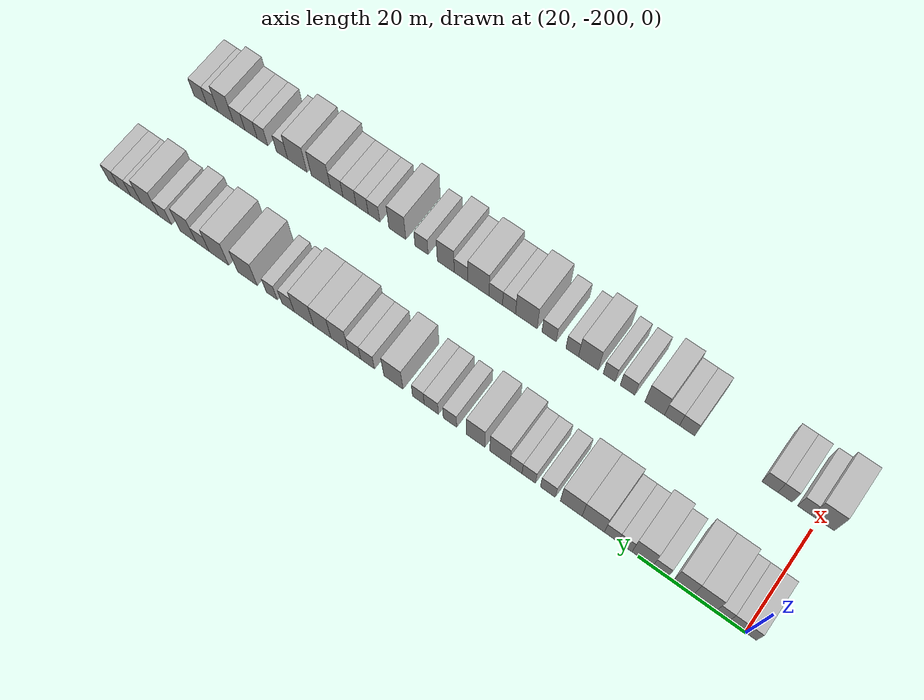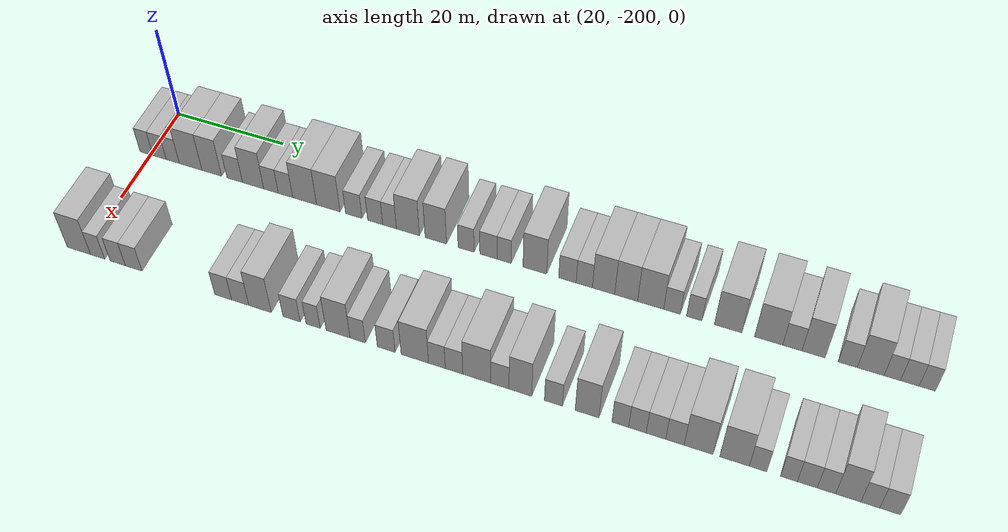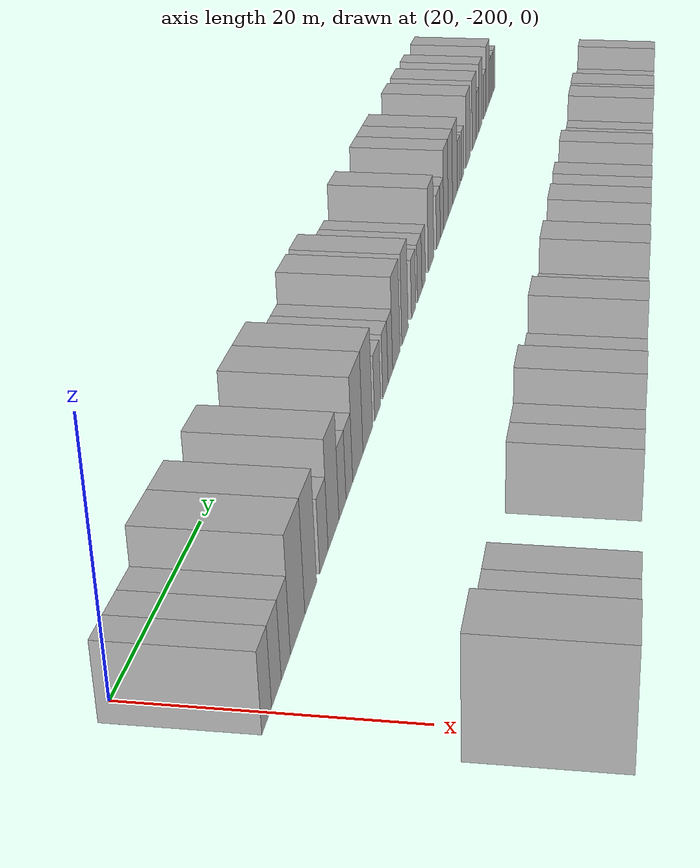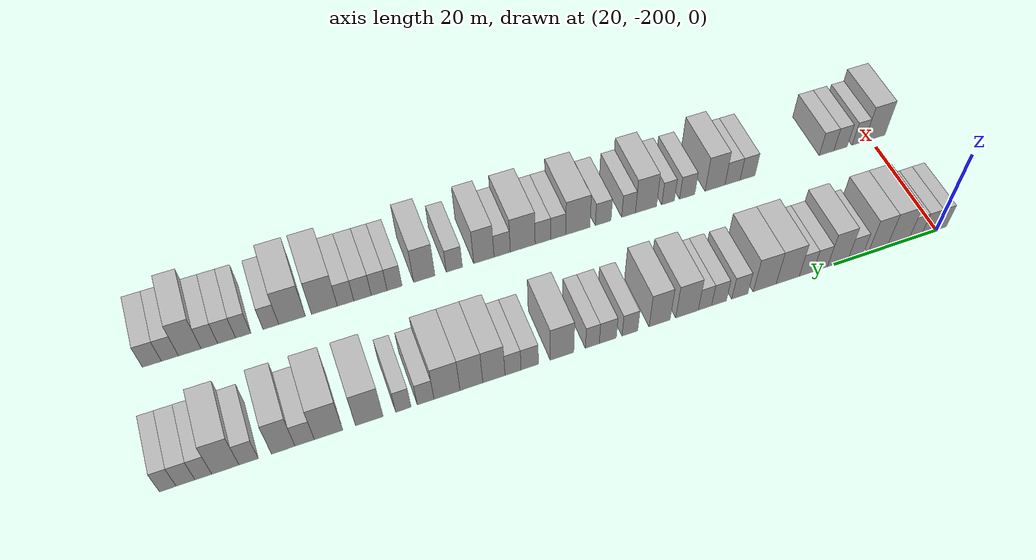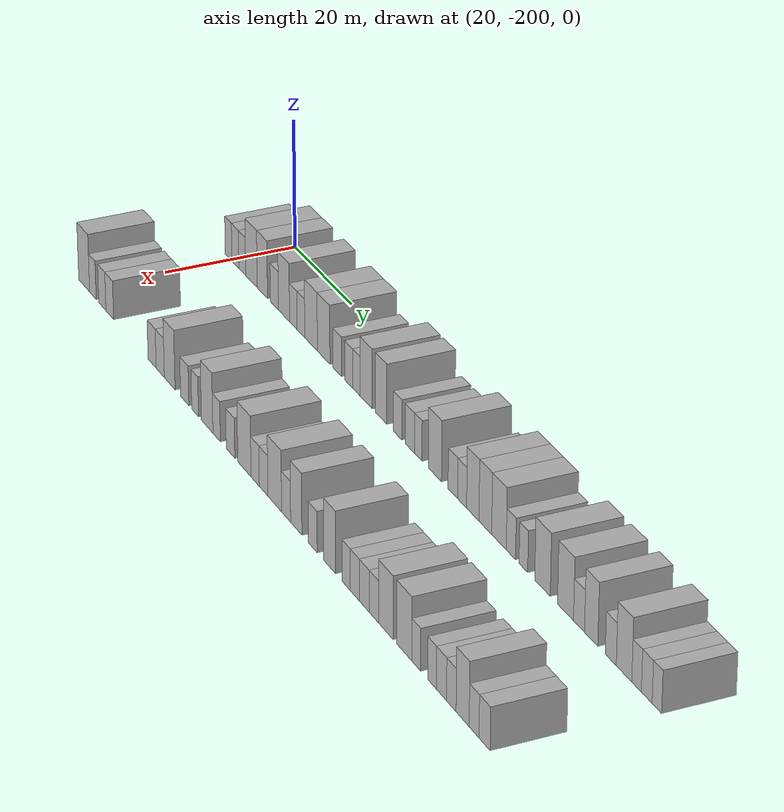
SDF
<sdf version="1.6">
 <world name="default">
  <model name="building_1">
   <static>1</static>
   <pose>25.0000 -200.7708 0 0.000000 0.000000 0.000000</pose>
   <link name="link">
    <pose>0 0 3.00 0 0 0</pose>
    <collision name="collision"><geometry><box><size>10.0000 2.4585 6.0000</size></box></geometry></collision>
    <visual name="visual">
     <cast_shadows>0</cast_shadows>
     <geometry><box><size>10.0000 2.4585 6.0000</size></box></geometry>
     <material>
      <script>
       <uri>model://HANNAS_wall/materials/scripts</uri>
       <uri>model://HANNAS_wall/materials/textures</uri>
       <name>vrc/HANNAS_wall</name>
      </script>
     </material>
    </visual>
   </link>
  </model>
  <model name="building_2">
   <static>1</static>
   <pose>25.0000 -198.2721 0 0.000000 0.000000 0.000000</pose>
   <link name="link">
    <pose>0 0 3.00 0 0 0</pose>
    <collision name="collision"><geometry><box><size>10.0000 2.5389 6.0000</size></box></geometry></collision>
    <visual name="visual">
     <cast_shadows>0</cast_shadows>
     <geometry><box><size>10.0000 2.5389 6.0000</size></box></geometry>
     <material>
      <script>
       <uri>model://HANNAS_wall/materials/scripts</uri>
       <uri>model://HANNAS_wall/materials/textures</uri>
       <name>vrc/HANNAS_wall</name>
      </script>
     </material>
    </visual>
   </link>
  </model>
  <model name="building_3">
   <static>1</static>
   <pose>25.0000 -195.7499 0 0.000000 0.000000 0.000000</pose>
   <link name="link">
    <pose>0 0 3.00 0 0 0</pose>
    <collision name="collision"><geometry><box><size>10.0000 2.5055 6.0000</size></box></geometry></collision>
    <visual name="visual">
     <cast_shadows>0</cast_shadows>
     <geometry><box><size>10.0000 2.5055 6.0000</size></box></geometry>
     <material>
      <script>
       <uri>model://HANNAS_wall/materials/scripts</uri>
       <uri>model://HANNAS_wall/materials/textures</uri>
       <name>vrc/HANNAS_wall</name>
      </script>
     </material>
    </visual>
   </link>
  </model>
  <model name="building_4">
   <static>1</static>
   <pose>25.0000 -192.3677 0 0.000000 0.000000 0.000000</pose>
   <link name="link">
    <pose>0 0 4.50 0 0 0</pose>
    <collision name="collision"><geometry><box><size>10.0000 4.2589 9.0000</size></box></geometry></collision>
    <visual name="visual">
     <cast_shadows>0</cast_shadows>
     <geometry><box><size>10.0000 4.2589 9.0000</size></box></geometry>
     <material>
      <script>
       <uri>model://HANNAS_wall/materials/scripts</uri>
       <uri>model://HANNAS_wall/materials/textures</uri>
       <name>vrc/HANNAS_wall</name>
      </script>
     </material>
    </visual>
   </link>
  </model>
  <model name="building_5">
   <static>1</static>
   <pose>25.0000 -188.3884 0 0.000000 0.000000 0.000000</pose>
   <link name="link">
    <pose>0 0 4.50 0 0 0</pose>
    <collision name="collision"><geometry><box><size>10.0000 3.6997 9.0000</size></box></geometry></collision>
    <visual name="visual">
     <cast_shadows>0</cast_shadows>
     <geometry><box><size>10.0000 3.6997 9.0000</size></box></geometry>
     <material>
      <script>
       <uri>model://HANNAS_wall/materials/scripts</uri>
       <uri>model://HANNAS_wall/materials/textures</uri>
       <name>vrc/HANNAS_wall</name>
      </script>
     </material>
    </visual>
   </link>
  </model>
  <model name="building_6">
   <static>1</static>
   <pose>25.0000 -184.0949 0 0.000000 0.000000 0.000000</pose>
   <link name="link">
    <pose>0 0 3.00 0 0 0</pose>
    <collision name="collision"><geometry><box><size>10.0000 2.8872 6.0000</size></box></geometry></collision>
    <visual name="visual">
     <cast_shadows>0</cast_shadows>
     <geometry><box><size>10.0000 2.8872 6.0000</size></box></geometry>
     <material>
      <script>
       <uri>model://HANNAS_wall/materials/scripts</uri>
       <uri>model://HANNAS_wall/materials/textures</uri>
       <name>vrc/HANNAS_wall</name>
      </script>
     </material>
    </visual>
   </link>
  </model>
  <model name="building_7">
   <static>1</static>
   <pose>25.0000 -180.6924 0 0.000000 0.000000 0.000000</pose>
   <link name="link">
    <pose>0 0 4.50 0 0 0</pose>
    <collision name="collision"><geometry><box><size>10.0000 3.9179 9.0000</size></box></geometry></collision>
    <visual name="visual">
     <cast_shadows>0</cast_shadows>
     <geometry><box><size>10.0000 3.9179 9.0000</size></box></geometry>
     <material>
      <script>
       <uri>model://HANNAS_wall/materials/scripts</uri>
       <uri>model://HANNAS_wall/materials/textures</uri>
       <name>vrc/HANNAS_wall</name>
      </script>
     </material>
    </visual>
   </link>
  </model>
  <model name="building_8">
   <static>1</static>
   <pose>25.0000 -177.3952 0 0.000000 0.000000 0.000000</pose>
   <link name="link">
    <pose>0 0 3.00 0 0 0</pose>
    <collision name="collision"><geometry><box><size>10.0000 2.6764 6.0000</size></box></geometry></collision>
    <visual name="visual">
     <cast_shadows>0</cast_shadows>
     <geometry><box><size>10.0000 2.6764 6.0000</size></box></geometry>
     <material>
      <script>
       <uri>model://HANNAS_wall/materials/scripts</uri>
       <uri>model://HANNAS_wall/materials/textures</uri>
       <name>vrc/HANNAS_wall</name>
      </script>
     </material>
    </visual>
   </link>
  </model>
  <model name="building_9">
   <static>1</static>
   <pose>25.0000 -174.7308 0 0.000000 0.000000 0.000000</pose>
   <link name="link">
    <pose>0 0 3.00 0 0 0</pose>
    <collision name="collision"><geometry><box><size>10.0000 2.6524 6.0000</size></box></geometry></collision>
    <visual name="visual">
     <cast_shadows>0</cast_shadows>
     <geometry><box><size>10.0000 2.6524 6.0000</size></box></geometry>
     <material>
      <script>
       <uri>model://HANNAS_wall/materials/scripts</uri>
       <uri>model://HANNAS_wall/materials/textures</uri>
       <name>vrc/HANNAS_wall</name>
      </script>
     </material>
    </visual>
   </link>
  </model>
  <model name="building_10">
   <static>1</static>
   <pose>25.0000 -171.2416 0 0.000000 0.000000 0.000000</pose>
   <link name="link">
    <pose>0 0 4.50 0 0 0</pose>
    <collision name="collision"><geometry><box><size>10.0000 4.3261 9.0000</size></box></geometry></collision>
    <visual name="visual">
     <cast_shadows>0</cast_shadows>
     <geometry><box><size>10.0000 4.3261 9.0000</size></box></geometry>
     <material>
      <script>
       <uri>model://HANNAS_wall/materials/scripts</uri>
       <uri>model://HANNAS_wall/materials/textures</uri>
       <name>vrc/HANNAS_wall</name>
      </script>
     </material>
    </visual>
   </link>
  </model>
  <model name="building_11">
   <static>1</static>
   <pose>25.0000 -166.9484 0 0.000000 0.000000 0.000000</pose>
   <link name="link">
    <pose>0 0 4.50 0 0 0</pose>
    <collision name="collision"><geometry><box><size>10.0000 4.2603 9.0000</size></box></geometry></collision>
    <visual name="visual">
     <cast_shadows>0</cast_shadows>
     <geometry><box><size>10.0000 4.2603 9.0000</size></box></geometry>
     <material>
      <script>
       <uri>model://HANNAS_wall/materials/scripts</uri>
       <uri>model://HANNAS_wall/materials/textures</uri>
       <name>vrc/HANNAS_wall</name>
      </script>
     </material>
    </visual>
   </link>
  </model>
  <model name="building_12">
   <static>1</static>
   <pose>25.0000 -162.3492 0 0.000000 0.000000 0.000000</pose>
   <link name="link">
    <pose>0 0 3.00 0 0 0</pose>
    <collision name="collision"><geometry><box><size>10.0000 2.9381 6.0000</size></box></geometry></collision>
    <visual name="visual">
     <cast_shadows>0</cast_shadows>
     <geometry><box><size>10.0000 2.9381 6.0000</size></box></geometry>
     <material>
      <script>
       <uri>model://HANNAS_wall/materials/scripts</uri>
       <uri>model://HANNAS_wall/materials/textures</uri>
       <name>vrc/HANNAS_wall</name>
      </script>
     </material>
    </visual>
   </link>
  </model>
  <model name="building_13">
   <static>1</static>
   <pose>25.0000 -158.5419 0 0.000000 0.000000 0.000000</pose>
   <link name="link">
    <pose>0 0 3.00 0 0 0</pose>
    <collision name="collision"><geometry><box><size>10.0000 2.6766 6.0000</size></box></geometry></collision>
    <visual name="visual">
     <cast_shadows>0</cast_shadows>
     <geometry><box><size>10.0000 2.6766 6.0000</size></box></geometry>
     <material>
      <script>
       <uri>model://HANNAS_wall/materials/scripts</uri>
       <uri>model://HANNAS_wall/materials/textures</uri>
       <name>vrc/HANNAS_wall</name>
      </script>
     </material>
    </visual>
   </link>
  </model>
  <model name="building_14">
   <static>1</static>
   <pose>25.0000 -155.9962 0 0.000000 0.000000 0.000000</pose>
   <link name="link">
    <pose>0 0 3.00 0 0 0</pose>
    <collision name="collision"><geometry><box><size>10.0000 2.4147 6.0000</size></box></geometry></collision>
    <visual name="visual">
     <cast_shadows>0</cast_shadows>
     <geometry><box><size>10.0000 2.4147 6.0000</size></box></geometry>
     <material>
      <script>
       <uri>model://HANNAS_wall/materials/scripts</uri>
       <uri>model://HANNAS_wall/materials/textures</uri>
       <name>vrc/HANNAS_wall</name>
      </script>
     </material>
    </visual>
   </link>
  </model>
  <model name="building_15">
   <static>1</static>
   <pose>25.0000 -152.7614 0 0.000000 0.000000 0.000000</pose>
   <link name="link">
    <pose>0 0 4.50 0 0 0</pose>
    <collision name="collision"><geometry><box><size>10.0000 4.0549 9.0000</size></box></geometry></collision>
    <visual name="visual">
     <cast_shadows>0</cast_shadows>
     <geometry><box><size>10.0000 4.0549 9.0000</size></box></geometry>
     <material>
      <script>
       <uri>model://HANNAS_wall/materials/scripts</uri>
       <uri>model://HANNAS_wall/materials/textures</uri>
       <name>vrc/HANNAS_wall</name>
      </script>
     </material>
    </visual>
   </link>
  </model>
  <model name="building_16">
   <static>1</static>
   <pose>25.0000 -147.8683 0 0.000000 0.000000 0.000000</pose>
   <link name="link">
    <pose>0 0 4.50 0 0 0</pose>
    <collision name="collision"><geometry><box><size>10.0000 3.7314 9.0000</size></box></geometry></collision>
    <visual name="visual">
     <cast_shadows>0</cast_shadows>
     <geometry><box><size>10.0000 3.7314 9.0000</size></box></geometry>
     <material>
      <script>
       <uri>model://HANNAS_wall/materials/scripts</uri>
       <uri>model://HANNAS_wall/materials/textures</uri>
       <name>vrc/HANNAS_wall</name>
      </script>
     </material>
    </visual>
   </link>
  </model>
  <model name="building_17">
   <static>1</static>
   <pose>25.0000 -142.6221 0 0.000000 0.000000 0.000000</pose>
   <link name="link">
    <pose>0 0 3.00 0 0 0</pose>
    <collision name="collision"><geometry><box><size>10.0000 2.7608 6.0000</size></box></geometry></collision>
    <visual name="visual">
     <cast_shadows>0</cast_shadows>
     <geometry><box><size>10.0000 2.7608 6.0000</size></box></geometry>
     <material>
      <script>
       <uri>model://HANNAS_wall/materials/scripts</uri>
       <uri>model://HANNAS_wall/materials/textures</uri>
       <name>vrc/HANNAS_wall</name>
      </script>
     </material>
    </visual>
   </link>
  </model>
  <model name="building_18">
   <static>1</static>
   <pose>25.0000 -138.7657 0 0.000000 0.000000 0.000000</pose>
   <link name="link">
    <pose>0 0 3.00 0 0 0</pose>
    <collision name="collision"><geometry><box><size>10.0000 2.9520 6.0000</size></box></geometry></collision>
    <visual name="visual">
     <cast_shadows>0</cast_shadows>
     <geometry><box><size>10.0000 2.9520 6.0000</size></box></geometry>
     <material>
      <script>
       <uri>model://HANNAS_wall/materials/scripts</uri>
       <uri>model://HANNAS_wall/materials/textures</uri>
       <name>vrc/HANNAS_wall</name>
      </script>
     </material>
    </visual>
   </link>
  </model>
  <model name="building_19">
   <static>1</static>
   <pose>25.0000 -136.0867 0 0.000000 0.000000 0.000000</pose>
   <link name="link">
    <pose>0 0 3.00 0 0 0</pose>
    <collision name="collision"><geometry><box><size>10.0000 2.4060 6.0000</size></box></geometry></collision>
    <visual name="visual">
     <cast_shadows>0</cast_shadows>
     <geometry><box><size>10.0000 2.4060 6.0000</size></box></geometry>
     <material>
      <script>
       <uri>model://HANNAS_wall/materials/scripts</uri>
       <uri>model://HANNAS_wall/materials/textures</uri>
       <name>vrc/HANNAS_wall</name>
      </script>
     </material>
    </visual>
   </link>
  </model>
  <model name="building_20">
   <static>1</static>
   <pose>25.0000 -130.8775 0 0.000000 0.000000 0.000000</pose>
   <link name="link">
    <pose>0 0 4.50 0 0 0</pose>
    <collision name="collision"><geometry><box><size>10.0000 4.0125 9.0000</size></box></geometry></collision>
    <visual name="visual">
     <cast_shadows>0</cast_shadows>
     <geometry><box><size>10.0000 4.0125 9.0000</size></box></geometry>
     <material>
      <script>
       <uri>model://HANNAS_wall/materials/scripts</uri>
       <uri>model://HANNAS_wall/materials/textures</uri>
       <name>vrc/HANNAS_wall</name>
      </script>
     </material>
    </visual>
   </link>
  </model>
  <model name="building_21">
   <static>1</static>
   <pose>25.0000 -125.4084 0 0.000000 0.000000 0.000000</pose>
   <link name="link">
    <pose>0 0 3.00 0 0 0</pose>
    <collision name="collision"><geometry><box><size>10.0000 2.9255 6.0000</size></box></geometry></collision>
    <visual name="visual">
     <cast_shadows>0</cast_shadows>
     <geometry><box><size>10.0000 2.9255 6.0000</size></box></geometry>
     <material>
      <script>
       <uri>model://HANNAS_wall/materials/scripts</uri>
       <uri>model://HANNAS_wall/materials/textures</uri>
       <name>vrc/HANNAS_wall</name>
      </script>
     </material>
    </visual>
   </link>
  </model>
  <model name="building_22">
   <static>1</static>
   <pose>25.0000 -122.5982 0 0.000000 0.000000 0.000000</pose>
   <link name="link">
    <pose>0 0 3.00 0 0 0</pose>
    <collision name="collision"><geometry><box><size>10.0000 2.6951 6.0000</size></box></geometry></collision>
    <visual name="visual">
     <cast_shadows>0</cast_shadows>
     <geometry><box><size>10.0000 2.6951 6.0000</size></box></geometry>
     <material>
      <script>
       <uri>model://HANNAS_wall/materials/scripts</uri>
       <uri>model://HANNAS_wall/materials/textures</uri>
       <name>vrc/HANNAS_wall</name>
      </script>
     </material>
    </visual>
   </link>
  </model>
  <model name="building_23">
   <static>1</static>
   <pose>25.0000 -119.4095 0 0.000000 0.000000 0.000000</pose>
   <link name="link">
    <pose>0 0 4.50 0 0 0</pose>
    <collision name="collision"><geometry><box><size>10.0000 3.6823 9.0000</size></box></geometry></collision>
    <visual name="visual">
     <cast_shadows>0</cast_shadows>
     <geometry><box><size>10.0000 3.6823 9.0000</size></box></geometry>
     <material>
      <script>
       <uri>model://HANNAS_wall/materials/scripts</uri>
       <uri>model://HANNAS_wall/materials/textures</uri>
       <name>vrc/HANNAS_wall</name>
      </script>
     </material>
    </visual>
   </link>
  </model>
  <model name="building_24">
   <static>1</static>
   <pose>25.0000 -115.6903 0 0.000000 0.000000 0.000000</pose>
   <link name="link">
    <pose>0 0 4.50 0 0 0</pose>
    <collision name="collision"><geometry><box><size>10.0000 3.7561 9.0000</size></box></geometry></collision>
    <visual name="visual">
     <cast_shadows>0</cast_shadows>
     <geometry><box><size>10.0000 3.7561 9.0000</size></box></geometry>
     <material>
      <script>
       <uri>model://HANNAS_wall/materials/scripts</uri>
       <uri>model://HANNAS_wall/materials/textures</uri>
       <name>vrc/HANNAS_wall</name>
      </script>
     </material>
    </visual>
   </link>
  </model>
  <model name="building_25">
   <static>1</static>
   <pose>25.0000 -111.6862 0 0.000000 0.000000 0.000000</pose>
   <link name="link">
    <pose>0 0 4.50 0 0 0</pose>
    <collision name="collision"><geometry><box><size>10.0000 4.2523 9.0000</size></box></geometry></collision>
    <visual name="visual">
     <cast_shadows>0</cast_shadows>
     <geometry><box><size>10.0000 4.2523 9.0000</size></box></geometry>
     <material>
      <script>
       <uri>model://HANNAS_wall/materials/scripts</uri>
       <uri>model://HANNAS_wall/materials/textures</uri>
       <name>vrc/HANNAS_wall</name>
      </script>
     </material>
    </visual>
   </link>
  </model>
  <model name="building_26">
   <static>1</static>
   <pose>25.0000 -108.2138 0 0.000000 0.000000 0.000000</pose>
   <link name="link">
    <pose>0 0 3.00 0 0 0</pose>
    <collision name="collision"><geometry><box><size>10.0000 2.6924 6.0000</size></box></geometry></collision>
    <visual name="visual">
     <cast_shadows>0</cast_shadows>
     <geometry><box><size>10.0000 2.6924 6.0000</size></box></geometry>
     <material>
      <script>
       <uri>model://HANNAS_wall/materials/scripts</uri>
       <uri>model://HANNAS_wall/materials/textures</uri>
       <name>vrc/HANNAS_wall</name>
      </script>
     </material>
    </visual>
   </link>
  </model>
  <model name="building_27">
   <static>1</static>
   <pose>25.0000 -104.6309 0 0.000000 0.000000 0.000000</pose>
   <link name="link">
    <pose>0 0 3.00 0 0 0</pose>
    <collision name="collision"><geometry><box><size>10.0000 2.4735 6.0000</size></box></geometry></collision>
    <visual name="visual">
     <cast_shadows>0</cast_shadows>
     <geometry><box><size>10.0000 2.4735 6.0000</size></box></geometry>
     <material>
      <script>
       <uri>model://HANNAS_wall/materials/scripts</uri>
       <uri>model://HANNAS_wall/materials/textures</uri>
       <name>vrc/HANNAS_wall</name>
      </script>
     </material>
    </visual>
   </link>
  </model>
  <model name="building_28">
   <static>1</static>
   <pose>25.0000 -99.2087 0 0.000000 0.000000 0.000000</pose>
   <link name="link">
    <pose>0 0 4.50 0 0 0</pose>
    <collision name="collision"><geometry><box><size>10.0000 4.3710 9.0000</size></box></geometry></collision>
    <visual name="visual">
     <cast_shadows>0</cast_shadows>
     <geometry><box><size>10.0000 4.3710 9.0000</size></box></geometry>
     <material>
      <script>
       <uri>model://HANNAS_wall/materials/scripts</uri>
       <uri>model://HANNAS_wall/materials/textures</uri>
       <name>vrc/HANNAS_wall</name>
      </script>
     </material>
    </visual>
   </link>
  </model>
  <model name="building_29">
   <static>1</static>
   <pose>25.0000 -92.8101 0 0.000000 0.000000 0.000000</pose>
   <link name="link">
    <pose>0 0 4.50 0 0 0</pose>
    <collision name="collision"><geometry><box><size>10.0000 4.4262 9.0000</size></box></geometry></collision>
    <visual name="visual">
     <cast_shadows>0</cast_shadows>
     <geometry><box><size>10.0000 4.4262 9.0000</size></box></geometry>
     <material>
      <script>
       <uri>model://HANNAS_wall/materials/scripts</uri>
       <uri>model://HANNAS_wall/materials/textures</uri>
       <name>vrc/HANNAS_wall</name>
      </script>
     </material>
    </visual>
   </link>
  </model>
  <model name="building_30">
   <static>1</static>
   <pose>25.0000 -89.0975 0 0.000000 0.000000 0.000000</pose>
   <link name="link">
    <pose>0 0 3.00 0 0 0</pose>
    <collision name="collision"><geometry><box><size>10.0000 2.9989 6.0000</size></box></geometry></collision>
    <visual name="visual">
     <cast_shadows>0</cast_shadows>
     <geometry><box><size>10.0000 2.9989 6.0000</size></box></geometry>
     <material>
      <script>
       <uri>model://HANNAS_wall/materials/scripts</uri>
       <uri>model://HANNAS_wall/materials/textures</uri>
       <name>vrc/HANNAS_wall</name>
      </script>
     </material>
    </visual>
   </link>
  </model>
  <model name="building_31">
   <static>1</static>
   <pose>25.0000 -85.7972 0 0.000000 0.000000 0.000000</pose>
   <link name="link">
    <pose>0 0 4.50 0 0 0</pose>
    <collision name="collision"><geometry><box><size>10.0000 3.6017 9.0000</size></box></geometry></collision>
    <visual name="visual">
     <cast_shadows>0</cast_shadows>
     <geometry><box><size>10.0000 3.6017 9.0000</size></box></geometry>
     <material>
      <script>
       <uri>model://HANNAS_wall/materials/scripts</uri>
       <uri>model://HANNAS_wall/materials/textures</uri>
       <name>vrc/HANNAS_wall</name>
      </script>
     </material>
    </visual>
   </link>
  </model>
  <model name="building_32">
   <static>1</static>
   <pose>25.0000 -80.5384 0 0.000000 0.000000 0.000000</pose>
   <link name="link">
    <pose>0 0 3.00 0 0 0</pose>
    <collision name="collision"><geometry><box><size>10.0000 2.9159 6.0000</size></box></geometry></collision>
    <visual name="visual">
     <cast_shadows>0</cast_shadows>
     <geometry><box><size>10.0000 2.9159 6.0000</size></box></geometry>
     <material>
      <script>
       <uri>model://HANNAS_wall/materials/scripts</uri>
       <uri>model://HANNAS_wall/materials/textures</uri>
       <name>vrc/HANNAS_wall</name>
      </script>
     </material>
    </visual>
   </link>
  </model>
  <model name="building_33">
   <static>1</static>
   <pose>25.0000 -77.0380 0 0.000000 0.000000 0.000000</pose>
   <link name="link">
    <pose>0 0 4.50 0 0 0</pose>
    <collision name="collision"><geometry><box><size>10.0000 4.0849 9.0000</size></box></geometry></collision>
    <visual name="visual">
     <cast_shadows>0</cast_shadows>
     <geometry><box><size>10.0000 4.0849 9.0000</size></box></geometry>
     <material>
      <script>
       <uri>model://HANNAS_wall/materials/scripts</uri>
       <uri>model://HANNAS_wall/materials/textures</uri>
       <name>vrc/HANNAS_wall</name>
      </script>
     </material>
    </visual>
   </link>
  </model>
  <model name="building_34">
   <static>1</static>
   <pose>25.0000 -73.7491 0 0.000000 0.000000 0.000000</pose>
   <link name="link">
    <pose>0 0 3.00 0 0 0</pose>
    <collision name="collision"><geometry><box><size>10.0000 2.4927 6.0000</size></box></geometry></collision>
    <visual name="visual">
     <cast_shadows>0</cast_shadows>
     <geometry><box><size>10.0000 2.4927 6.0000</size></box></geometry>
     <material>
      <script>
       <uri>model://HANNAS_wall/materials/scripts</uri>
       <uri>model://HANNAS_wall/materials/textures</uri>
       <name>vrc/HANNAS_wall</name>
      </script>
     </material>
    </visual>
   </link>
  </model>
  <model name="building_35">
   <static>1</static>
   <pose>25.0000 -71.1056 0 0.000000 0.000000 0.000000</pose>
   <link name="link">
    <pose>0 0 3.00 0 0 0</pose>
    <collision name="collision"><geometry><box><size>10.0000 2.7944 6.0000</size></box></geometry></collision>
    <visual name="visual">
     <cast_shadows>0</cast_shadows>
     <geometry><box><size>10.0000 2.7944 6.0000</size></box></geometry>
     <material>
      <script>
       <uri>model://HANNAS_wall/materials/scripts</uri>
       <uri>model://HANNAS_wall/materials/textures</uri>
       <name>vrc/HANNAS_wall</name>
      </script>
     </material>
    </visual>
   </link>
  </model>
  <model name="building_36">
   <static>1</static>
   <pose>25.0000 -68.4861 0 0.000000 0.000000 0.000000</pose>
   <link name="link">
    <pose>0 0 3.00 0 0 0</pose>
    <collision name="collision"><geometry><box><size>10.0000 2.4445 6.0000</size></box></geometry></collision>
    <visual name="visual">
     <cast_shadows>0</cast_shadows>
     <geometry><box><size>10.0000 2.4445 6.0000</size></box></geometry>
     <material>
      <script>
       <uri>model://HANNAS_wall/materials/scripts</uri>
       <uri>model://HANNAS_wall/materials/textures</uri>
       <name>vrc/HANNAS_wall</name>
      </script>
     </material>
    </visual>
   </link>
  </model>
  <model name="building_106">
   <static>1</static>
   <pose>47.0000 -200.8595 0 0.000000 0.000000 0.000000</pose>
   <link name="link">
    <pose>0 0 4.50 0 0 0</pose>
    <collision name="collision"><geometry><box><size>10.0000 4.2809 9.0000</size></box></geometry></collision>
    <visual name="visual">
     <cast_shadows>0</cast_shadows>
     <geometry><box><size>10.0000 4.2809 9.0000</size></box></geometry>
     <material>
      <script>
       <uri>model://HANNAS_wall/materials/scripts</uri>
       <uri>model://HANNAS_wall/materials/textures</uri>
       <name>vrc/HANNAS_wall</name>
      </script>
     </material>
    </visual>
   </link>
  </model>
  <model name="building_107">
   <static>1</static>
   <pose>47.0000 -197.4300 0 0.000000 0.000000 0.000000</pose>
   <link name="link">
    <pose>0 0 3.00 0 0 0</pose>
    <collision name="collision"><geometry><box><size>10.0000 2.5781 6.0000</size></box></geometry></collision>
    <visual name="visual">
     <cast_shadows>0</cast_shadows>
     <geometry><box><size>10.0000 2.5781 6.0000</size></box></geometry>
     <material>
      <script>
       <uri>model://HANNAS_wall/materials/scripts</uri>
       <uri>model://HANNAS_wall/materials/textures</uri>
       <name>vrc/HANNAS_wall</name>
      </script>
     </material>
    </visual>
   </link>
  </model>
  <model name="building_108">
   <static>1</static>
   <pose>47.0000 -193.7611 0 0.000000 0.000000 0.000000</pose>
   <link name="link">
    <pose>0 0 3.00 0 0 0</pose>
    <collision name="collision"><geometry><box><size>10.0000 2.7598 6.0000</size></box></geometry></collision>
    <visual name="visual">
     <cast_shadows>0</cast_shadows>
     <geometry><box><size>10.0000 2.7598 6.0000</size></box></geometry>
     <material>
      <script>
       <uri>model://HANNAS_wall/materials/scripts</uri>
       <uri>model://HANNAS_wall/materials/textures</uri>
       <name>vrc/HANNAS_wall</name>
      </script>
     </material>
    </visual>
   </link>
  </model>
  <model name="building_109">
   <static>1</static>
   <pose>47.0000 -190.8844 0 0.000000 0.000000 0.000000</pose>
   <link name="link">
    <pose>0 0 3.00 0 0 0</pose>
    <collision name="collision"><geometry><box><size>10.0000 2.9935 6.0000</size></box></geometry></collision>
    <visual name="visual">
     <cast_shadows>0</cast_shadows>
     <geometry><box><size>10.0000 2.9935 6.0000</size></box></geometry>
     <material>
      <script>
       <uri>model://HANNAS_wall/materials/scripts</uri>
       <uri>model://HANNAS_wall/materials/textures</uri>
       <name>vrc/HANNAS_wall</name>
      </script>
     </material>
    </visual>
   </link>
  </model>
  <model name="building_110">
   <static>1</static>
   <pose>47.0000 -174.9523 0 0.000000 0.000000 0.000000</pose>
   <link name="link">
    <pose>0 0 3.00 0 0 0</pose>
    <collision name="collision"><geometry><box><size>10.0000 2.9569 6.0000</size></box></geometry></collision>
    <visual name="visual">
     <cast_shadows>0</cast_shadows>
     <geometry><box><size>10.0000 2.9569 6.0000</size></box></geometry>
     <material>
      <script>
       <uri>model://HANNAS_wall/materials/scripts</uri>
       <uri>model://HANNAS_wall/materials/textures</uri>
       <name>vrc/HANNAS_wall</name>
      </script>
     </material>
    </visual>
   </link>
  </model>
  <model name="building_111">
   <static>1</static>
   <pose>47.0000 -171.9740 0 0.000000 0.000000 0.000000</pose>
   <link name="link">
    <pose>0 0 3.00 0 0 0</pose>
    <collision name="collision"><geometry><box><size>10.0000 2.9997 6.0000</size></box></geometry></collision>
    <visual name="visual">
     <cast_shadows>0</cast_shadows>
     <geometry><box><size>10.0000 2.9997 6.0000</size></box></geometry>
     <material>
      <script>
       <uri>model://HANNAS_wall/materials/scripts</uri>
       <uri>model://HANNAS_wall/materials/textures</uri>
       <name>vrc/HANNAS_wall</name>
      </script>
     </material>
    </visual>
   </link>
  </model>
  <model name="building_112">
   <static>1</static>
   <pose>47.0000 -168.5303 0 0.000000 0.000000 0.000000</pose>
   <link name="link">
    <pose>0 0 4.50 0 0 0</pose>
    <collision name="collision"><geometry><box><size>10.0000 3.8877 9.0000</size></box></geometry></collision>
    <visual name="visual">
     <cast_shadows>0</cast_shadows>
     <geometry><box><size>10.0000 3.8877 9.0000</size></box></geometry>
     <material>
      <script>
       <uri>model://HANNAS_wall/materials/scripts</uri>
       <uri>model://HANNAS_wall/materials/textures</uri>
       <name>vrc/HANNAS_wall</name>
      </script>
     </material>
    </visual>
   </link>
  </model>
  <model name="building_113">
   <static>1</static>
   <pose>47.0000 -163.1110 0 0.000000 0.000000 0.000000</pose>
   <link name="link">
    <pose>0 0 3.00 0 0 0</pose>
    <collision name="collision"><geometry><box><size>10.0000 2.9507 6.0000</size></box></geometry></collision>
    <visual name="visual">
     <cast_shadows>0</cast_shadows>
     <geometry><box><size>10.0000 2.9507 6.0000</size></box></geometry>
     <material>
      <script>
       <uri>model://HANNAS_wall/materials/scripts</uri>
       <uri>model://HANNAS_wall/materials/textures</uri>
       <name>vrc/HANNAS_wall</name>
      </script>
     </material>
    </visual>
   </link>
  </model>
  <model name="building_114">
   <static>1</static>
   <pose>47.0000 -159.4293 0 0.000000 0.000000 0.000000</pose>
   <link name="link">
    <pose>0 0 3.00 0 0 0</pose>
    <collision name="collision"><geometry><box><size>10.0000 2.4127 6.0000</size></box></geometry></collision>
    <visual name="visual">
     <cast_shadows>0</cast_shadows>
     <geometry><box><size>10.0000 2.4127 6.0000</size></box></geometry>
     <material>
      <script>
       <uri>model://HANNAS_wall/materials/scripts</uri>
       <uri>model://HANNAS_wall/materials/textures</uri>
       <name>vrc/HANNAS_wall</name>
      </script>
     </material>
    </visual>
   </link>
  </model>
  <model name="building_115">
   <static>1</static>
   <pose>47.0000 -155.2098 0 0.000000 0.000000 0.000000</pose>
   <link name="link">
    <pose>0 0 4.50 0 0 0</pose>
    <collision name="collision"><geometry><box><size>10.0000 4.0263 9.0000</size></box></geometry></collision>
    <visual name="visual">
     <cast_shadows>0</cast_shadows>
     <geometry><box><size>10.0000 4.0263 9.0000</size></box></geometry>
     <material>
      <script>
       <uri>model://HANNAS_wall/materials/scripts</uri>
       <uri>model://HANNAS_wall/materials/textures</uri>
       <name>vrc/HANNAS_wall</name>
      </script>
     </material>
    </visual>
   </link>
  </model>
  <model name="building_116">
   <static>1</static>
   <pose>47.0000 -151.9077 0 0.000000 0.000000 0.000000</pose>
   <link name="link">
    <pose>0 0 3.00 0 0 0</pose>
    <collision name="collision"><geometry><box><size>10.0000 2.5779 6.0000</size></box></geometry></collision>
    <visual name="visual">
     <cast_shadows>0</cast_shadows>
     <geometry><box><size>10.0000 2.5779 6.0000</size></box></geometry>
     <material>
      <script>
       <uri>model://HANNAS_wall/materials/scripts</uri>
       <uri>model://HANNAS_wall/materials/textures</uri>
       <name>vrc/HANNAS_wall</name>
      </script>
     </material>
    </visual>
   </link>
  </model>
  <model name="building_117">
   <static>1</static>
   <pose>47.0000 -147.1453 0 0.000000 0.000000 0.000000</pose>
   <link name="link">
    <pose>0 0 3.00 0 0 0</pose>
    <collision name="collision"><geometry><box><size>10.0000 2.9470 6.0000</size></box></geometry></collision>
    <visual name="visual">
     <cast_shadows>0</cast_shadows>
     <geometry><box><size>10.0000 2.9470 6.0000</size></box></geometry>
     <material>
      <script>
       <uri>model://HANNAS_wall/materials/scripts</uri>
       <uri>model://HANNAS_wall/materials/textures</uri>
       <name>vrc/HANNAS_wall</name>
      </script>
     </material>
    </visual>
   </link>
  </model>
  <model name="building_118">
   <static>1</static>
   <pose>47.0000 -142.4270 0 0.000000 0.000000 0.000000</pose>
   <link name="link">
    <pose>0 0 4.50 0 0 0</pose>
    <collision name="collision"><geometry><box><size>10.0000 4.4896 9.0000</size></box></geometry></collision>
    <visual name="visual">
     <cast_shadows>0</cast_shadows>
     <geometry><box><size>10.0000 4.4896 9.0000</size></box></geometry>
     <material>
      <script>
       <uri>model://HANNAS_wall/materials/scripts</uri>
       <uri>model://HANNAS_wall/materials/textures</uri>
       <name>vrc/HANNAS_wall</name>
      </script>
     </material>
    </visual>
   </link>
  </model>
  <model name="building_119">
   <static>1</static>
   <pose>47.0000 -138.8107 0 0.000000 0.000000 0.000000</pose>
   <link name="link">
    <pose>0 0 3.00 0 0 0</pose>
    <collision name="collision"><geometry><box><size>10.0000 2.7430 6.0000</size></box></geometry></collision>
    <visual name="visual">
     <cast_shadows>0</cast_shadows>
     <geometry><box><size>10.0000 2.7430 6.0000</size></box></geometry>
     <material>
      <script>
       <uri>model://HANNAS_wall/materials/scripts</uri>
       <uri>model://HANNAS_wall/materials/textures</uri>
       <name>vrc/HANNAS_wall</name>
      </script>
     </material>
    </visual>
   </link>
  </model>
  <model name="building_120">
   <static>1</static>
   <pose>47.0000 -136.0185 0 0.000000 0.000000 0.000000</pose>
   <link name="link">
    <pose>0 0 3.00 0 0 0</pose>
    <collision name="collision"><geometry><box><size>10.0000 2.8412 6.0000</size></box></geometry></collision>
    <visual name="visual">
     <cast_shadows>0</cast_shadows>
     <geometry><box><size>10.0000 2.8412 6.0000</size></box></geometry>
     <material>
      <script>
       <uri>model://HANNAS_wall/materials/scripts</uri>
       <uri>model://HANNAS_wall/materials/textures</uri>
       <name>vrc/HANNAS_wall</name>
      </script>
     </material>
    </visual>
   </link>
  </model>
  <model name="building_121">
   <static>1</static>
   <pose>47.0000 -132.3555 0 0.000000 0.000000 0.000000</pose>
   <link name="link">
    <pose>0 0 4.50 0 0 0</pose>
    <collision name="collision"><geometry><box><size>10.0000 4.4849 9.0000</size></box></geometry></collision>
    <visual name="visual">
     <cast_shadows>0</cast_shadows>
     <geometry><box><size>10.0000 4.4849 9.0000</size></box></geometry>
     <material>
      <script>
       <uri>model://HANNAS_wall/materials/scripts</uri>
       <uri>model://HANNAS_wall/materials/textures</uri>
       <name>vrc/HANNAS_wall</name>
      </script>
     </material>
    </visual>
   </link>
  </model>
  <model name="building_122">
   <static>1</static>
   <pose>47.0000 -128.6467 0 0.000000 0.000000 0.000000</pose>
   <link name="link">
    <pose>0 0 3.00 0 0 0</pose>
    <collision name="collision"><geometry><box><size>10.0000 2.9327 6.0000</size></box></geometry></collision>
    <visual name="visual">
     <cast_shadows>0</cast_shadows>
     <geometry><box><size>10.0000 2.9327 6.0000</size></box></geometry>
     <material>
      <script>
       <uri>model://HANNAS_wall/materials/scripts</uri>
       <uri>model://HANNAS_wall/materials/textures</uri>
       <name>vrc/HANNAS_wall</name>
      </script>
     </material>
    </visual>
   </link>
  </model>
  <model name="building_123">
   <static>1</static>
   <pose>47.0000 -125.3660 0 0.000000 0.000000 0.000000</pose>
   <link name="link">
    <pose>0 0 4.50 0 0 0</pose>
    <collision name="collision"><geometry><box><size>10.0000 3.6287 9.0000</size></box></geometry></collision>
    <visual name="visual">
     <cast_shadows>0</cast_shadows>
     <geometry><box><size>10.0000 3.6287 9.0000</size></box></geometry>
     <material>
      <script>
       <uri>model://HANNAS_wall/materials/scripts</uri>
       <uri>model://HANNAS_wall/materials/textures</uri>
       <name>vrc/HANNAS_wall</name>
      </script>
     </material>
    </visual>
   </link>
  </model>
  <model name="building_124">
   <static>1</static>
   <pose>47.0000 -120.1359 0 0.000000 0.000000 0.000000</pose>
   <link name="link">
    <pose>0 0 3.00 0 0 0</pose>
    <collision name="collision"><geometry><box><size>10.0000 2.8315 6.0000</size></box></geometry></collision>
    <visual name="visual">
     <cast_shadows>0</cast_shadows>
     <geometry><box><size>10.0000 2.8315 6.0000</size></box></geometry>
     <material>
      <script>
       <uri>model://HANNAS_wall/materials/scripts</uri>
       <uri>model://HANNAS_wall/materials/textures</uri>
       <name>vrc/HANNAS_wall</name>
      </script>
     </material>
    </visual>
   </link>
  </model>
  <model name="building_125">
   <static>1</static>
   <pose>47.0000 -114.8649 0 0.000000 0.000000 0.000000</pose>
   <link name="link">
    <pose>0 0 4.50 0 0 0</pose>
    <collision name="collision"><geometry><box><size>10.0000 3.7105 9.0000</size></box></geometry></collision>
    <visual name="visual">
     <cast_shadows>0</cast_shadows>
     <geometry><box><size>10.0000 3.7105 9.0000</size></box></geometry>
     <material>
      <script>
       <uri>model://HANNAS_wall/materials/scripts</uri>
       <uri>model://HANNAS_wall/materials/textures</uri>
       <name>vrc/HANNAS_wall</name>
      </script>
     </material>
    </visual>
   </link>
  </model>
  <model name="building_126">
   <static>1</static>
   <pose>47.0000 -109.7215 0 0.000000 0.000000 0.000000</pose>
   <link name="link">
    <pose>0 0 3.00 0 0 0</pose>
    <collision name="collision"><geometry><box><size>10.0000 2.5764 6.0000</size></box></geometry></collision>
    <visual name="visual">
     <cast_shadows>0</cast_shadows>
     <geometry><box><size>10.0000 2.5764 6.0000</size></box></geometry>
     <material>
      <script>
       <uri>model://HANNAS_wall/materials/scripts</uri>
       <uri>model://HANNAS_wall/materials/textures</uri>
       <name>vrc/HANNAS_wall</name>
      </script>
     </material>
    </visual>
   </link>
  </model>
  <model name="building_127">
   <static>1</static>
   <pose>47.0000 -107.0878 0 0.000000 0.000000 0.000000</pose>
   <link name="link">
    <pose>0 0 3.00 0 0 0</pose>
    <collision name="collision"><geometry><box><size>10.0000 2.6909 6.0000</size></box></geometry></collision>
    <visual name="visual">
     <cast_shadows>0</cast_shadows>
     <geometry><box><size>10.0000 2.6909 6.0000</size></box></geometry>
     <material>
      <script>
       <uri>model://HANNAS_wall/materials/scripts</uri>
       <uri>model://HANNAS_wall/materials/textures</uri>
       <name>vrc/HANNAS_wall</name>
      </script>
     </material>
    </visual>
   </link>
  </model>
  <model name="building_128">
   <static>1</static>
   <pose>47.0000 -104.2547 0 0.000000 0.000000 0.000000</pose>
   <link name="link">
    <pose>0 0 3.00 0 0 0</pose>
    <collision name="collision"><geometry><box><size>10.0000 2.9753 6.0000</size></box></geometry></collision>
    <visual name="visual">
     <cast_shadows>0</cast_shadows>
     <geometry><box><size>10.0000 2.9753 6.0000</size></box></geometry>
     <material>
      <script>
       <uri>model://HANNAS_wall/materials/scripts</uri>
       <uri>model://HANNAS_wall/materials/textures</uri>
       <name>vrc/HANNAS_wall</name>
      </script>
     </material>
    </visual>
   </link>
  </model>
  <model name="building_129">
   <static>1</static>
   <pose>47.0000 -101.3745 0 0.000000 0.000000 0.000000</pose>
   <link name="link">
    <pose>0 0 3.00 0 0 0</pose>
    <collision name="collision"><geometry><box><size>10.0000 2.7851 6.0000</size></box></geometry></collision>
    <visual name="visual">
     <cast_shadows>0</cast_shadows>
     <geometry><box><size>10.0000 2.7851 6.0000</size></box></geometry>
     <material>
      <script>
       <uri>model://HANNAS_wall/materials/scripts</uri>
       <uri>model://HANNAS_wall/materials/textures</uri>
       <name>vrc/HANNAS_wall</name>
      </script>
     </material>
    </visual>
   </link>
  </model>
  <model name="building_130">
   <static>1</static>
   <pose>47.0000 -97.8074 0 0.000000 0.000000 0.000000</pose>
   <link name="link">
    <pose>0 0 4.50 0 0 0</pose>
    <collision name="collision"><geometry><box><size>10.0000 4.3491 9.0000</size></box></geometry></collision>
    <visual name="visual">
     <cast_shadows>0</cast_shadows>
     <geometry><box><size>10.0000 4.3491 9.0000</size></box></geometry>
     <material>
      <script>
       <uri>model://HANNAS_wall/materials/scripts</uri>
       <uri>model://HANNAS_wall/materials/textures</uri>
       <name>vrc/HANNAS_wall</name>
      </script>
     </material>
    </visual>
   </link>
  </model>
  <model name="building_131">
   <static>1</static>
   <pose>47.0000 -92.4303 0 0.000000 0.000000 0.000000</pose>
   <link name="link">
    <pose>0 0 4.50 0 0 0</pose>
    <collision name="collision"><geometry><box><size>10.0000 4.4052 9.0000</size></box></geometry></collision>
    <visual name="visual">
     <cast_shadows>0</cast_shadows>
     <geometry><box><size>10.0000 4.4052 9.0000</size></box></geometry>
     <material>
      <script>
       <uri>model://HANNAS_wall/materials/scripts</uri>
       <uri>model://HANNAS_wall/materials/textures</uri>
       <name>vrc/HANNAS_wall</name>
      </script>
     </material>
    </visual>
   </link>
  </model>
  <model name="building_132">
   <static>1</static>
   <pose>47.0000 -88.9315 0 0.000000 0.000000 0.000000</pose>
   <link name="link">
    <pose>0 0 3.00 0 0 0</pose>
    <collision name="collision"><geometry><box><size>10.0000 2.5923 6.0000</size></box></geometry></collision>
    <visual name="visual">
     <cast_shadows>0</cast_shadows>
     <geometry><box><size>10.0000 2.5923 6.0000</size></box></geometry>
     <material>
      <script>
       <uri>model://HANNAS_wall/materials/scripts</uri>
       <uri>model://HANNAS_wall/materials/textures</uri>
       <name>vrc/HANNAS_wall</name>
      </script>
     </material>
    </visual>
   </link>
  </model>
  <model name="building_133">
   <static>1</static>
   <pose>47.0000 -84.4056 0 0.000000 0.000000 0.000000</pose>
   <link name="link">
    <pose>0 0 3.00 0 0 0</pose>
    <collision name="collision"><geometry><box><size>10.0000 2.4596 6.0000</size></box></geometry></collision>
    <visual name="visual">
     <cast_shadows>0</cast_shadows>
     <geometry><box><size>10.0000 2.4596 6.0000</size></box></geometry>
     <material>
      <script>
       <uri>model://HANNAS_wall/materials/scripts</uri>
       <uri>model://HANNAS_wall/materials/textures</uri>
       <name>vrc/HANNAS_wall</name>
      </script>
     </material>
    </visual>
   </link>
  </model>
  <model name="building_134">
   <static>1</static>
   <pose>47.0000 -81.7333 0 0.000000 0.000000 0.000000</pose>
   <link name="link">
    <pose>0 0 3.00 0 0 0</pose>
    <collision name="collision"><geometry><box><size>10.0000 2.8851 6.0000</size></box></geometry></collision>
    <visual name="visual">
     <cast_shadows>0</cast_shadows>
     <geometry><box><size>10.0000 2.8851 6.0000</size></box></geometry>
     <material>
      <script>
       <uri>model://HANNAS_wall/materials/scripts</uri>
       <uri>model://HANNAS_wall/materials/textures</uri>
       <name>vrc/HANNAS_wall</name>
      </script>
     </material>
    </visual>
   </link>
  </model>
  <model name="building_135">
   <static>1</static>
   <pose>47.0000 -78.9583 0 0.000000 0.000000 0.000000</pose>
   <link name="link">
    <pose>0 0 3.00 0 0 0</pose>
    <collision name="collision"><geometry><box><size>10.0000 2.6649 6.0000</size></box></geometry></collision>
    <visual name="visual">
     <cast_shadows>0</cast_shadows>
     <geometry><box><size>10.0000 2.6649 6.0000</size></box></geometry>
     <material>
      <script>
       <uri>model://HANNAS_wall/materials/scripts</uri>
       <uri>model://HANNAS_wall/materials/textures</uri>
       <name>vrc/HANNAS_wall</name>
      </script>
     </material>
    </visual>
   </link>
  </model>
  <model name="building_136">
   <static>1</static>
   <pose>47.0000 -75.8178 0 0.000000 0.000000 0.000000</pose>
   <link name="link">
    <pose>0 0 4.50 0 0 0</pose>
    <collision name="collision"><geometry><box><size>10.0000 3.6159 9.0000</size></box></geometry></collision>
    <visual name="visual">
     <cast_shadows>0</cast_shadows>
     <geometry><box><size>10.0000 3.6159 9.0000</size></box></geometry>
     <material>
      <script>
       <uri>model://HANNAS_wall/materials/scripts</uri>
       <uri>model://HANNAS_wall/materials/textures</uri>
       <name>vrc/HANNAS_wall</name>
      </script>
     </material>
    </visual>
   </link>
  </model>
  <model name="building_137">
   <static>1</static>
   <pose>47.0000 -72.6596 0 0.000000 0.000000 0.000000</pose>
   <link name="link">
    <pose>0 0 3.00 0 0 0</pose>
    <collision name="collision"><geometry><box><size>10.0000 2.7004 6.0000</size></box></geometry></collision>
    <visual name="visual">
     <cast_shadows>0</cast_shadows>
     <geometry><box><size>10.0000 2.7004 6.0000</size></box></geometry>
     <material>
      <script>
       <uri>model://HANNAS_wall/materials/scripts</uri>
       <uri>model://HANNAS_wall/materials/textures</uri>
       <name>vrc/HANNAS_wall</name>
      </script>
     </material>
    </visual>
   </link>
  </model>
  <model name="building_138">
   <static>1</static>
   <pose>47.0000 -69.8106 0 0.000000 0.000000 0.000000</pose>
   <link name="link">
    <pose>0 0 3.00 0 0 0</pose>
    <collision name="collision"><geometry><box><size>10.0000 2.9976 6.0000</size></box></geometry></collision>
    <visual name="visual">
     <cast_shadows>0</cast_shadows>
     <geometry><box><size>10.0000 2.9976 6.0000</size></box></geometry>
     <material>
      <script>
       <uri>model://HANNAS_wall/materials/scripts</uri>
       <uri>model://HANNAS_wall/materials/textures</uri>
       <name>vrc/HANNAS_wall</name>
      </script>
     </material>
    </visual>
   </link>
  </model>
 </world>
</sdf>
